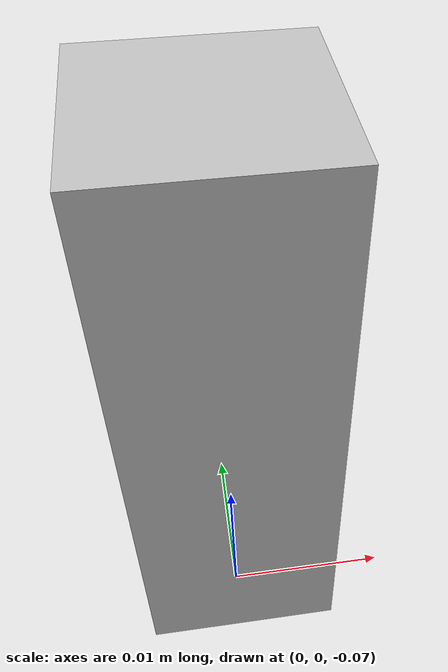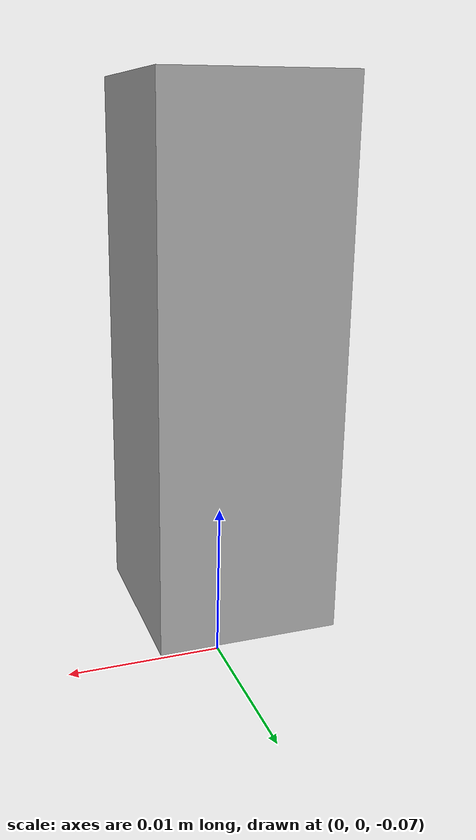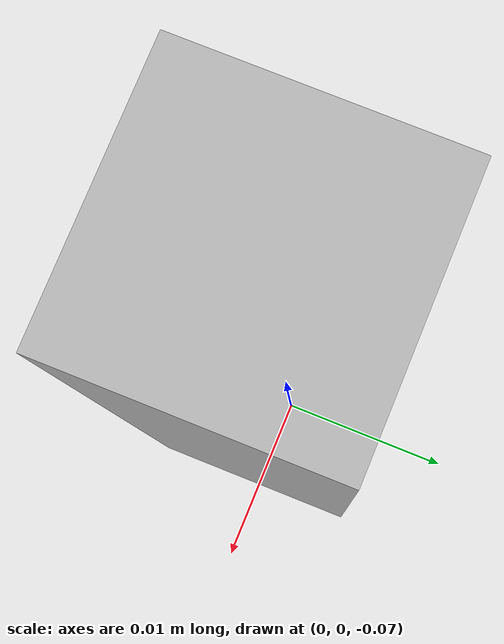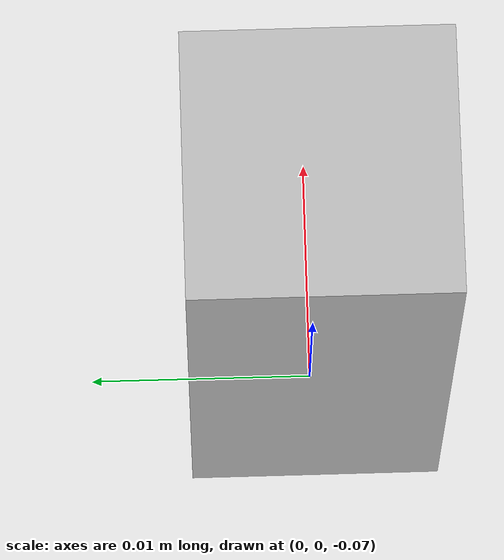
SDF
<?xml version="1.0" ?>
<sdf version="1.4">
  <model name="stone">
    <static>false</static>
    <pose>0 0 -0.05 0 -1.57 0</pose>
    <link name="link">
      <inertial>
        <pose>0.1 -0.15 -0.15 0 0 0</pose>
        <mass>5</mass>
        <inertia>
          <ixx>0.02</ixx>
          <ixy>0</ixy>
          <ixz>0</ixz>
          <iyy>0.02</iyy>
          <iyz>0</iyz>
          <izz>0.02</izz>
        </inertia>
      </inertial>
      <collision name="collision">
        <geometry>
          <mesh>
            <uri>model://stone/meshes/stone.obj</uri>
            <scale>0.1 0.1 0.1</scale>
          </mesh>
        </geometry>
        <surface>
          <friction>
            <torsional>
              <coefficient>1.0</coefficient>
            </torsional>
            <ode>
              <mu>2</mu>
              <mu2>0.01</mu2>
            </ode>
          </friction>
        </surface>
      </collision>
      <visual name="visual">
        <geometry>
          <mesh>
            <uri>model://stone/meshes/stone.obj</uri>
            <scale>0.1 0.1 0.1</scale>
          </mesh>
        </geometry>
        <material>
          <script>
            <uri>model://materials/scripts</uri>
          	<uri>model://materials/textures</uri>
          	<name>stone/floor</name>
          </script>
        </material>
      </visual>
    </link>
  </model>
</sdf>
